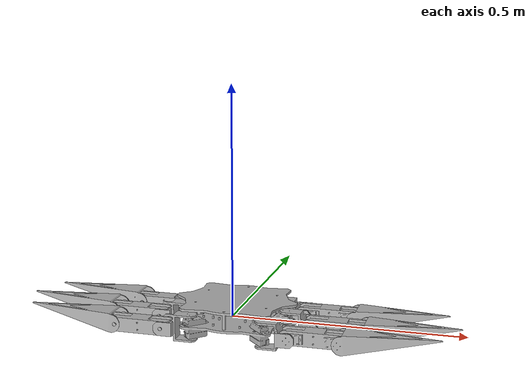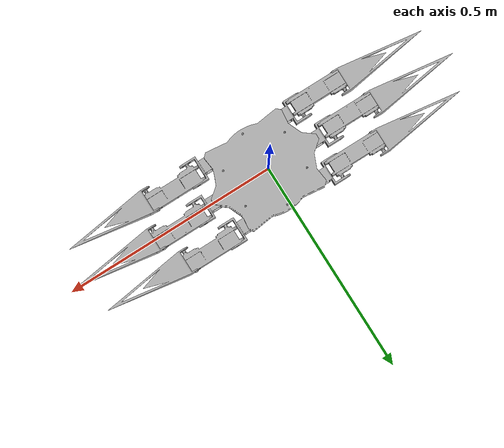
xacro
<?xml version="1.0" ?>
<robot name="hex_final_urdf" xmlns:xacro="http://www.ros.org/wiki/xacro">

<xacro:include filename="$(find hex_final_urdf_description)/urdf/materials.xacro" />
<xacro:include filename="$(find hex_final_urdf_description)/urdf/hex_final_urdf.trans" />
<xacro:include filename="$(find hex_final_urdf_description)/urdf/hex_final_urdf.gazebo" />

<link name="base_link">
  <inertial>
    <origin xyz="0.008825975080218545 -0.0006417253665135361 0.009163636393538644" rpy="0 0 0"/>
    <mass value="4.696322130210778"/>
    <inertia ixx="0.016504" iyy="0.024691" izz="0.036814" ixy="-4e-06" iyz="0.0" ixz="-0.0"/>
  </inertial>
  <visual>
    <origin xyz="0 0 0" rpy="0 0 0"/>
    <geometry>
      <mesh filename="package://hex_final_urdf_description/meshes/base_link.stl" scale="0.001 0.001 0.001"/>
    </geometry>
    <material name="silver"/>
  </visual>
  <collision>
    <origin xyz="0 0 0" rpy="0 0 0"/>
    <geometry>
      <mesh filename="package://hex_final_urdf_description/meshes/base_link.stl" scale="0.001 0.001 0.001"/>
    </geometry>
  </collision>
</link>

<link name="hip_link_1_1">
  <inertial>
    <origin xyz="-0.03206068846643359 -0.0005590825770585561 -0.028059834297053474" rpy="0 0 0"/>
    <mass value="0.02676157449504787"/>
    <inertia ixx="1.5e-05" iyy="1.7e-05" izz="1.6e-05" ixy="-0.0" iyz="0.0" ixz="0.0"/>
  </inertial>
  <visual>
    <origin xyz="0.068956 -0.077136 -0.021885" rpy="0 0 0"/>
    <geometry>
      <mesh filename="package://hex_final_urdf_description/meshes/hip_link_1_1.stl" scale="0.001 0.001 0.001"/>
    </geometry>
    <material name="silver"/>
  </visual>
  <collision>
    <origin xyz="0.068956 -0.077136 -0.021885" rpy="0 0 0"/>
    <geometry>
      <mesh filename="package://hex_final_urdf_description/meshes/hip_link_1_1.stl" scale="0.001 0.001 0.001"/>
    </geometry>
  </collision>
</link>

<link name="hip_link_3_1">
  <inertial>
    <origin xyz="-0.032060942535913226 -0.0005598285075788824 -0.028059834297053502" rpy="0 0 0"/>
    <mass value="0.02676157449504787"/>
    <inertia ixx="1.5e-05" iyy="1.7e-05" izz="1.6e-05" ixy="-0.0" iyz="0.0" ixz="0.0"/>
  </inertial>
  <visual>
    <origin xyz="0.101174 0.000645 -0.021885" rpy="0 0 0"/>
    <geometry>
      <mesh filename="package://hex_final_urdf_description/meshes/hip_link_3_1.stl" scale="0.001 0.001 0.001"/>
    </geometry>
    <material name="silver"/>
  </visual>
  <collision>
    <origin xyz="0.101174 0.000645 -0.021885" rpy="0 0 0"/>
    <geometry>
      <mesh filename="package://hex_final_urdf_description/meshes/hip_link_3_1.stl" scale="0.001 0.001 0.001"/>
    </geometry>
  </collision>
</link>

<link name="hip_link_5_1">
  <inertial>
    <origin xyz="-0.03206068846643352 -0.0005595744380991335 -0.02805983429705346" rpy="0 0 0"/>
    <mass value="0.02676157449504787"/>
    <inertia ixx="1.5e-05" iyy="1.7e-05" izz="1.6e-05" ixy="-0.0" iyz="0.0" ixz="0.0"/>
  </inertial>
  <visual>
    <origin xyz="0.068956 0.078427 -0.021885" rpy="0 0 0"/>
    <geometry>
      <mesh filename="package://hex_final_urdf_description/meshes/hip_link_5_1.stl" scale="0.001 0.001 0.001"/>
    </geometry>
    <material name="silver"/>
  </visual>
  <collision>
    <origin xyz="0.068956 0.078427 -0.021885" rpy="0 0 0"/>
    <geometry>
      <mesh filename="package://hex_final_urdf_description/meshes/hip_link_5_1.stl" scale="0.001 0.001 0.001"/>
    </geometry>
  </collision>
</link>

<link name="hip_link_2_1">
  <inertial>
    <origin xyz="0.032060405545851225 0.0005595915681265995 -0.02805983429705361" rpy="0 0 0"/>
    <mass value="0.026761574495047884"/>
    <inertia ixx="1.5e-05" iyy="1.7e-05" izz="1.6e-05" ixy="-0.0" iyz="-0.0" ixz="-0.0"/>
  </inertial>
  <visual>
    <origin xyz="-0.086608 -0.077136 -0.021885" rpy="0 0 0"/>
    <geometry>
      <mesh filename="package://hex_final_urdf_description/meshes/hip_link_2_1.stl" scale="0.001 0.001 0.001"/>
    </geometry>
    <material name="silver"/>
  </visual>
  <collision>
    <origin xyz="-0.086608 -0.077136 -0.021885" rpy="0 0 0"/>
    <geometry>
      <mesh filename="package://hex_final_urdf_description/meshes/hip_link_2_1.stl" scale="0.001 0.001 0.001"/>
    </geometry>
  </collision>
</link>

<link name="hip_link_4_1">
  <inertial>
    <origin xyz="0.032060659615331014 0.0005588456376063277 -0.02805983429705355" rpy="0 0 0"/>
    <mass value="0.026761574495047884"/>
    <inertia ixx="1.5e-05" iyy="1.7e-05" izz="1.6e-05" ixy="-0.0" iyz="-0.0" ixz="-0.0"/>
  </inertial>
  <visual>
    <origin xyz="-0.118826 0.000645 -0.021885" rpy="0 0 0"/>
    <geometry>
      <mesh filename="package://hex_final_urdf_description/meshes/hip_link_4_1.stl" scale="0.001 0.001 0.001"/>
    </geometry>
    <material name="silver"/>
  </visual>
  <collision>
    <origin xyz="-0.118826 0.000645 -0.021885" rpy="0 0 0"/>
    <geometry>
      <mesh filename="package://hex_final_urdf_description/meshes/hip_link_4_1.stl" scale="0.001 0.001 0.001"/>
    </geometry>
  </collision>
</link>

<link name="hip_link_6_1">
  <inertial>
    <origin xyz="0.032060405545851295 0.000559099707086036 -0.02805983429705349" rpy="0 0 0"/>
    <mass value="0.026761574495047884"/>
    <inertia ixx="1.5e-05" iyy="1.7e-05" izz="1.6e-05" ixy="-0.0" iyz="-0.0" ixz="-0.0"/>
  </inertial>
  <visual>
    <origin xyz="-0.086608 0.078427 -0.021885" rpy="0 0 0"/>
    <geometry>
      <mesh filename="package://hex_final_urdf_description/meshes/hip_link_6_1.stl" scale="0.001 0.001 0.001"/>
    </geometry>
    <material name="silver"/>
  </visual>
  <collision>
    <origin xyz="-0.086608 0.078427 -0.021885" rpy="0 0 0"/>
    <geometry>
      <mesh filename="package://hex_final_urdf_description/meshes/hip_link_6_1.stl" scale="0.001 0.001 0.001"/>
    </geometry>
  </collision>
</link>

<link name="thigh_link_1_1">
  <inertial>
    <origin xyz="-0.05264062317283599 -0.033571274079311056 -1.9542260402799147e-05" rpy="0 0 0"/>
    <mass value="0.11346511278470423"/>
    <inertia ixx="2.8e-05" iyy="0.0002" izz="0.000213" ixy="0.0" iyz="0.0" ixz="-0.0"/>
  </inertial>
  <visual>
    <origin xyz="0.126956 -0.104636 0.005615" rpy="0 0 0"/>
    <geometry>
      <mesh filename="package://hex_final_urdf_description/meshes/thigh_link_1_1.stl" scale="0.001 0.001 0.001"/>
    </geometry>
    <material name="silver"/>
  </visual>
  <collision>
    <origin xyz="0.126956 -0.104636 0.005615" rpy="0 0 0"/>
    <geometry>
      <mesh filename="package://hex_final_urdf_description/meshes/thigh_link_1_1.stl" scale="0.001 0.001 0.001"/>
    </geometry>
  </collision>
</link>

<link name="thigh_link_3_1">
  <inertial>
    <origin xyz="-0.05264087724231564 -0.03357202000983138 -1.9542260402826035e-05" rpy="0 0 0"/>
    <mass value="0.11346511278470423"/>
    <inertia ixx="2.8e-05" iyy="0.0002" izz="0.000213" ixy="0.0" iyz="0.0" ixz="-0.0"/>
  </inertial>
  <visual>
    <origin xyz="0.159174 -0.026855 0.005615" rpy="0 0 0"/>
    <geometry>
      <mesh filename="package://hex_final_urdf_description/meshes/thigh_link_3_1.stl" scale="0.001 0.001 0.001"/>
    </geometry>
    <material name="silver"/>
  </visual>
  <collision>
    <origin xyz="0.159174 -0.026855 0.005615" rpy="0 0 0"/>
    <geometry>
      <mesh filename="package://hex_final_urdf_description/meshes/thigh_link_3_1.stl" scale="0.001 0.001 0.001"/>
    </geometry>
  </collision>
</link>

<link name="thigh_link_5_1">
  <inertial>
    <origin xyz="-0.052640623172835965 -0.033571765940351606 -1.9542260402783534e-05" rpy="0 0 0"/>
    <mass value="0.11346511278470423"/>
    <inertia ixx="2.8e-05" iyy="0.0002" izz="0.000213" ixy="0.0" iyz="0.0" ixz="-0.0"/>
  </inertial>
  <visual>
    <origin xyz="0.126956 0.050927 0.005615" rpy="0 0 0"/>
    <geometry>
      <mesh filename="package://hex_final_urdf_description/meshes/thigh_link_5_1.stl" scale="0.001 0.001 0.001"/>
    </geometry>
    <material name="silver"/>
  </visual>
  <collision>
    <origin xyz="0.126956 0.050927 0.005615" rpy="0 0 0"/>
    <geometry>
      <mesh filename="package://hex_final_urdf_description/meshes/thigh_link_5_1.stl" scale="0.001 0.001 0.001"/>
    </geometry>
  </collision>
</link>

<link name="thigh_link_2_1">
  <inertial>
    <origin xyz="0.05263886798255954 0.03357178275317327 1.8547903258242342e-05" rpy="0 0 0"/>
    <mass value="0.11346511468823228"/>
    <inertia ixx="2.8e-05" iyy="0.0002" izz="0.000213" ixy="-0.0" iyz="0.0" ixz="0.0"/>
  </inertial>
  <visual>
    <origin xyz="-0.144608 -0.049636 0.005615" rpy="0 0 0"/>
    <geometry>
      <mesh filename="package://hex_final_urdf_description/meshes/thigh_link_2_1.stl" scale="0.001 0.001 0.001"/>
    </geometry>
    <material name="silver"/>
  </visual>
  <collision>
    <origin xyz="-0.144608 -0.049636 0.005615" rpy="0 0 0"/>
    <geometry>
      <mesh filename="package://hex_final_urdf_description/meshes/thigh_link_2_1.stl" scale="0.001 0.001 0.001"/>
    </geometry>
  </collision>
</link>

<link name="thigh_link_4_1">
  <inertial>
    <origin xyz="0.05263912205203933 0.03357103682265299 1.8547903258304792e-05" rpy="0 0 0"/>
    <mass value="0.11346511468823228"/>
    <inertia ixx="2.8e-05" iyy="0.0002" izz="0.000213" ixy="-0.0" iyz="0.0" ixz="0.0"/>
  </inertial>
  <visual>
    <origin xyz="-0.176826 0.028145 0.005615" rpy="0 0 0"/>
    <geometry>
      <mesh filename="package://hex_final_urdf_description/meshes/thigh_link_4_1.stl" scale="0.001 0.001 0.001"/>
    </geometry>
    <material name="silver"/>
  </visual>
  <collision>
    <origin xyz="-0.176826 0.028145 0.005615" rpy="0 0 0"/>
    <geometry>
      <mesh filename="package://hex_final_urdf_description/meshes/thigh_link_4_1.stl" scale="0.001 0.001 0.001"/>
    </geometry>
  </collision>
</link>

<link name="thigh_link_6_1">
  <inertial>
    <origin xyz="0.052638867982559595 0.03357129089213268 1.854790325838459e-05" rpy="0 0 0"/>
    <mass value="0.11346511468823228"/>
    <inertia ixx="2.8e-05" iyy="0.0002" izz="0.000213" ixy="-0.0" iyz="0.0" ixz="0.0"/>
  </inertial>
  <visual>
    <origin xyz="-0.144608 0.105927 0.005615" rpy="0 0 0"/>
    <geometry>
      <mesh filename="package://hex_final_urdf_description/meshes/thigh_link_6_1.stl" scale="0.001 0.001 0.001"/>
    </geometry>
    <material name="silver"/>
  </visual>
  <collision>
    <origin xyz="-0.144608 0.105927 0.005615" rpy="0 0 0"/>
    <geometry>
      <mesh filename="package://hex_final_urdf_description/meshes/thigh_link_6_1.stl" scale="0.001 0.001 0.001"/>
    </geometry>
  </collision>
</link>

<link name="shin_link_1_1">
  <inertial>
    <origin xyz="-0.06567923673204151 -0.02667853756935462 0.010343853082014309" rpy="0 0 0"/>
    <mass value="0.28364788051397943"/>
    <inertia ixx="0.000125" iyy="0.000706" izz="0.000765" ixy="6e-06" iyz="-1e-06" ixz="5.2e-05"/>
  </inertial>
  <visual>
    <origin xyz="0.232236 -0.104636 0.005615" rpy="0 0 0"/>
    <geometry>
      <mesh filename="package://hex_final_urdf_description/meshes/shin_link_1_1.stl" scale="0.001 0.001 0.001"/>
    </geometry>
    <material name="silver"/>
  </visual>
  <collision>
    <origin xyz="0.232236 -0.104636 0.005615" rpy="0 0 0"/>
    <geometry>
      <mesh filename="package://hex_final_urdf_description/meshes/shin_link_1_1.stl" scale="0.001 0.001 0.001"/>
    </geometry>
  </collision>
</link>

<link name="shin_link_3_1">
  <inertial>
    <origin xyz="-0.06567949080152108 -0.026679283499874935 0.01034385308201428" rpy="0 0 0"/>
    <mass value="0.28364788051397943"/>
    <inertia ixx="0.000125" iyy="0.000706" izz="0.000765" ixy="6e-06" iyz="-1e-06" ixz="5.2e-05"/>
  </inertial>
  <visual>
    <origin xyz="0.264454 -0.026855 0.005615" rpy="0 0 0"/>
    <geometry>
      <mesh filename="package://hex_final_urdf_description/meshes/shin_link_3_1.stl" scale="0.001 0.001 0.001"/>
    </geometry>
    <material name="silver"/>
  </visual>
  <collision>
    <origin xyz="0.264454 -0.026855 0.005615" rpy="0 0 0"/>
    <geometry>
      <mesh filename="package://hex_final_urdf_description/meshes/shin_link_3_1.stl" scale="0.001 0.001 0.001"/>
    </geometry>
  </collision>
</link>

<link name="shin_link_5_1">
  <inertial>
    <origin xyz="-0.06567923673204129 -0.026679029430395157 0.010343853082014326" rpy="0 0 0"/>
    <mass value="0.28364788051397943"/>
    <inertia ixx="0.000125" iyy="0.000706" izz="0.000765" ixy="6e-06" iyz="-1e-06" ixz="5.2e-05"/>
  </inertial>
  <visual>
    <origin xyz="0.232236 0.050927 0.005615" rpy="0 0 0"/>
    <geometry>
      <mesh filename="package://hex_final_urdf_description/meshes/shin_link_5_1.stl" scale="0.001 0.001 0.001"/>
    </geometry>
    <material name="silver"/>
  </visual>
  <collision>
    <origin xyz="0.232236 0.050927 0.005615" rpy="0 0 0"/>
    <geometry>
      <mesh filename="package://hex_final_urdf_description/meshes/shin_link_5_1.stl" scale="0.001 0.001 0.001"/>
    </geometry>
  </collision>
</link>

<link name="shin_link_2_1">
  <inertial>
    <origin xyz="0.06567895381145672 0.0266790465604224 0.010343853082014326" rpy="0 0 0"/>
    <mass value="0.28364788051397866"/>
    <inertia ixx="0.000125" iyy="0.000706" izz="0.000765" ixy="6e-06" iyz="1e-06" ixz="-5.2e-05"/>
  </inertial>
  <visual>
    <origin xyz="-0.249888 -0.049636 0.005615" rpy="0 0 0"/>
    <geometry>
      <mesh filename="package://hex_final_urdf_description/meshes/shin_link_2_1.stl" scale="0.001 0.001 0.001"/>
    </geometry>
    <material name="silver"/>
  </visual>
  <collision>
    <origin xyz="-0.249888 -0.049636 0.005615" rpy="0 0 0"/>
    <geometry>
      <mesh filename="package://hex_final_urdf_description/meshes/shin_link_2_1.stl" scale="0.001 0.001 0.001"/>
    </geometry>
  </collision>
</link>

<link name="shin_link_4_1">
  <inertial>
    <origin xyz="0.06567920788093651 0.026678300629902132 0.010343853082014388" rpy="0 0 0"/>
    <mass value="0.28364788051397866"/>
    <inertia ixx="0.000125" iyy="0.000706" izz="0.000765" ixy="6e-06" iyz="1e-06" ixz="-5.2e-05"/>
  </inertial>
  <visual>
    <origin xyz="-0.282106 0.028145 0.005615" rpy="0 0 0"/>
    <geometry>
      <mesh filename="package://hex_final_urdf_description/meshes/shin_link_4_1.stl" scale="0.001 0.001 0.001"/>
    </geometry>
    <material name="silver"/>
  </visual>
  <collision>
    <origin xyz="-0.282106 0.028145 0.005615" rpy="0 0 0"/>
    <geometry>
      <mesh filename="package://hex_final_urdf_description/meshes/shin_link_4_1.stl" scale="0.001 0.001 0.001"/>
    </geometry>
  </collision>
</link>

<link name="shin_link_6_1">
  <inertial>
    <origin xyz="0.06567895381145672 0.02667855469938181 0.01034385308201451" rpy="0 0 0"/>
    <mass value="0.28364788051397866"/>
    <inertia ixx="0.000125" iyy="0.000706" izz="0.000765" ixy="6e-06" iyz="1e-06" ixz="-5.2e-05"/>
  </inertial>
  <visual>
    <origin xyz="-0.249888 0.105927 0.005615" rpy="0 0 0"/>
    <geometry>
      <mesh filename="package://hex_final_urdf_description/meshes/shin_link_6_1.stl" scale="0.001 0.001 0.001"/>
    </geometry>
    <material name="silver"/>
  </visual>
  <collision>
    <origin xyz="-0.249888 0.105927 0.005615" rpy="0 0 0"/>
    <geometry>
      <mesh filename="package://hex_final_urdf_description/meshes/shin_link_6_1.stl" scale="0.001 0.001 0.001"/>
    </geometry>
  </collision>
</link>

<joint name="hip_joint_1" type="revolute">
  <origin xyz="-0.068956 0.077136 0.021885" rpy="0 0 0"/>
  <parent link="base_link"/>
  <child link="hip_link_1_1"/>
  <axis xyz="0.0 0.0 1.0"/>
  <limit upper="0.261799" lower="-1.570796" effort="100" velocity="100"/>
</joint>

<joint name="hip_joint_3" type="revolute">
  <origin xyz="-0.101174 -0.000645 0.021885" rpy="0 0 0"/>
  <parent link="base_link"/>
  <child link="hip_link_3_1"/>
  <axis xyz="0.0 0.0 1.0"/>
  <limit upper="1.047198" lower="-1.047198" effort="100" velocity="100"/>
</joint>

<joint name="hip_joint_5" type="revolute">
  <origin xyz="-0.068956 -0.078427 0.021885" rpy="0 0 0"/>
  <parent link="base_link"/>
  <child link="hip_link_5_1"/>
  <axis xyz="0.0 0.0 1.0"/>
  <limit upper="1.570796" lower="-0.261799" effort="100" velocity="100"/>
</joint>

<joint name="hip_joint_2" type="revolute">
  <origin xyz="0.086608 0.077136 0.021885" rpy="0 0 0"/>
  <parent link="base_link"/>
  <child link="hip_link_2_1"/>
  <axis xyz="0.0 0.0 1.0"/>
  <limit upper="1.570796" lower="-0.261799" effort="100" velocity="100"/>
</joint>

<joint name="hip_joint_4" type="revolute">
  <origin xyz="0.118826 -0.000645 0.021885" rpy="0 0 0"/>
  <parent link="base_link"/>
  <child link="hip_link_4_1"/>
  <axis xyz="0.0 0.0 1.0"/>
  <limit upper="1.047198" lower="-1.047198" effort="100" velocity="100"/>
</joint>

<joint name="hip_joint_6" type="revolute">
  <origin xyz="0.086608 -0.078427 0.021885" rpy="0 0 0"/>
  <parent link="base_link"/>
  <child link="hip_link_6_1"/>
  <axis xyz="0.0 0.0 1.0"/>
  <limit upper="0.261799" lower="-1.570796" effort="100" velocity="100"/>
</joint>

<joint name="knee_joint_1" type="revolute">
  <origin xyz="-0.058 0.0275 -0.0275" rpy="0 0 0"/>
  <parent link="hip_link_1_1"/>
  <child link="thigh_link_1_1"/>
  <axis xyz="0.0 -1.0 0.0"/>
  <limit upper="1.570796" lower="-1.570796" effort="100" velocity="100"/>
</joint>

<joint name="knee_joint_3" type="revolute">
  <origin xyz="-0.058 0.0275 -0.0275" rpy="0 0 0"/>
  <parent link="hip_link_3_1"/>
  <child link="thigh_link_3_1"/>
  <axis xyz="0.0 -1.0 0.0"/>
  <limit upper="1.570796" lower="-1.570796" effort="100" velocity="100"/>
</joint>

<joint name="knee_joint_5" type="revolute">
  <origin xyz="-0.058 0.0275 -0.0275" rpy="0 0 0"/>
  <parent link="hip_link_5_1"/>
  <child link="thigh_link_5_1"/>
  <axis xyz="0.0 -1.0 0.0"/>
  <limit upper="1.570796" lower="-1.570796" effort="100" velocity="100"/>
</joint>

<joint name="knee_joint_2" type="revolute">
  <origin xyz="0.058 -0.0275 -0.0275" rpy="0 0 0"/>
  <parent link="hip_link_2_1"/>
  <child link="thigh_link_2_1"/>
  <axis xyz="0.0 1.0 0.0"/>
  <limit upper="1.570796" lower="-1.570796" effort="100" velocity="100"/>
</joint>

<joint name="knee_joint_4" type="revolute">
  <origin xyz="0.058 -0.0275 -0.0275" rpy="0 0 0"/>
  <parent link="hip_link_4_1"/>
  <child link="thigh_link_4_1"/>
  <axis xyz="0.0 1.0 0.0"/>
  <limit upper="1.570796" lower="-1.570796" effort="100" velocity="100"/>
</joint>

<joint name="knee_joint_6" type="revolute">
  <origin xyz="0.058 -0.0275 -0.0275" rpy="0 0 0"/>
  <parent link="hip_link_6_1"/>
  <child link="thigh_link_6_1"/>
  <axis xyz="0.0 1.0 0.0"/>
  <limit upper="1.570796" lower="-1.570796" effort="100" velocity="100"/>
</joint>
<joint name="ankle_joint_1" type="revolute">
  <origin xyz="-0.10528 0.0 0.0" rpy="0 0 0"/>
  <parent link="thigh_link_1_1"/>
  <child link="shin_link_1_1"/>
  <axis xyz="0.0 1.0 0.0"/>
  <limit upper="0.785398" lower="-2.356194" effort="100" velocity="100"/>
</joint>

<joint name="ankle_joint_3" type="revolute">
  <origin xyz="-0.10528 0.0 0.0" rpy="0 0 0"/>
  <parent link="thigh_link_3_1"/>
  <child link="shin_link_3_1"/>
  <axis xyz="0.0 1.0 0.0"/>
  <limit upper="0.785398" lower="-2.356194" effort="100" velocity="100"/>
</joint>

<joint name="ankle_joint_5" type="revolute">
  <origin xyz="-0.10528 0.0 0.0" rpy="0 0 0"/>
  <parent link="thigh_link_5_1"/>
  <child link="shin_link_5_1"/>
  <axis xyz="0.0 1.0 0.0"/>
  <limit upper="0.785398" lower="-2.356194" effort="100" velocity="100"/>
</joint>

<joint name="ankle_joint_2" type="revolute">
  <origin xyz="0.10528 0.0 0.0" rpy="0 0 0"/>
  <parent link="thigh_link_2_1"/>
  <child link="shin_link_2_1"/>
  <axis xyz="0.0 -1.0 0.0"/>
  <limit upper="0.785398" lower="-2.356194" effort="100" velocity="100"/>
</joint>

<joint name="ankle_joint_4" type="revolute">
  <origin xyz="0.10528 0.0 0.0" rpy="0 0 0"/>
  <parent link="thigh_link_4_1"/>
  <child link="shin_link_4_1"/>
  <axis xyz="0.0 -1.0 0.0"/>
  <limit upper="0.785398" lower="-2.356194" effort="100" velocity="100"/>
</joint>

<joint name="ankle_joint_6" type="revolute">
  <origin xyz="0.10528 0.0 0.0" rpy="0 0 0"/>
  <parent link="thigh_link_6_1"/>
  <child link="shin_link_6_1"/>
  <axis xyz="0.0 -1.0 0.0"/>
  <limit upper="0.785398" lower="-2.356194" effort="100" velocity="100"/>
</joint>

</robot>

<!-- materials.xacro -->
<robot name="hex_final_urdf" xmlns:xacro="http://www.ros.org/wiki/xacro" >

<material name="silver">
  <color rgba="0.700 0.700 0.700 1.000"/>
</material>

</robot>

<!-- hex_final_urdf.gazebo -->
<robot name="hex_final_urdf" xmlns:xacro="http://www.ros.org/wiki/xacro" >

<xacro:property name="body_color" value="Gazebo/Silver" />

<gazebo>
  <plugin name="gazebo_ros_control" filename="libgazebo_ros_control.so"/>
</gazebo>
<gazebo reference="base_link">
  <material>${body_color}</material>
  <mu1>0.2</mu1>
  <mu2>0.2</mu2>
  <selfCollide>true</selfCollide>
  <gravity>true</gravity>
</gazebo>

<gazebo reference="hip_link_1_1">
  <material>${body_color}</material>
  <mu1>0.2</mu1>
  <mu2>0.2</mu2>
  <selfCollide>true</selfCollide>
</gazebo>

<gazebo reference="hip_link_3_1">
  <material>${body_color}</material>
  <mu1>0.2</mu1>
  <mu2>0.2</mu2>
  <selfCollide>true</selfCollide>
</gazebo>

<gazebo reference="hip_link_5_1">
  <material>${body_color}</material>
  <mu1>0.2</mu1>
  <mu2>0.2</mu2>
  <selfCollide>true</selfCollide>
</gazebo>

<gazebo reference="hip_link_2_1">
  <material>${body_color}</material>
  <mu1>0.2</mu1>
  <mu2>0.2</mu2>
  <selfCollide>true</selfCollide>
</gazebo>

<gazebo reference="hip_link_4_1">
  <material>${body_color}</material>
  <mu1>0.2</mu1>
  <mu2>0.2</mu2>
  <selfCollide>true</selfCollide>
</gazebo>

<gazebo reference="hip_link_6_1">
  <material>${body_color}</material>
  <mu1>0.2</mu1>
  <mu2>0.2</mu2>
  <selfCollide>true</selfCollide>
</gazebo>

<gazebo reference="thigh_link_1_1">
  <material>${body_color}</material>
  <mu1>0.2</mu1>
  <mu2>0.2</mu2>
  <selfCollide>true</selfCollide>
</gazebo>

<gazebo reference="thigh_link_3_1">
  <material>${body_color}</material>
  <mu1>0.2</mu1>
  <mu2>0.2</mu2>
  <selfCollide>true</selfCollide>
</gazebo>

<gazebo reference="thigh_link_5_1">
  <material>${body_color}</material>
  <mu1>0.2</mu1>
  <mu2>0.2</mu2>
  <selfCollide>true</selfCollide>
</gazebo>

<gazebo reference="thigh_link_2_1">
  <material>${body_color}</material>
  <mu1>0.2</mu1>
  <mu2>0.2</mu2>
  <selfCollide>true</selfCollide>
</gazebo>

<gazebo reference="thigh_link_4_1">
  <material>${body_color}</material>
  <mu1>0.2</mu1>
  <mu2>0.2</mu2>
  <selfCollide>true</selfCollide>
</gazebo>

<gazebo reference="thigh_link_6_1">
  <material>${body_color}</material>
  <mu1>0.2</mu1>
  <mu2>0.2</mu2>
  <selfCollide>true</selfCollide>
</gazebo>

<gazebo reference="shin_link_1_1">
  <material>${body_color}</material>
  <mu1>1.2</mu1>
  <mu2>1.2</mu2>
  <selfCollide>true</selfCollide>
</gazebo>

<gazebo reference="shin_link_3_1">
  <material>${body_color}</material>
  <mu1>1.2</mu1>
  <mu2>1.2</mu2>
  <selfCollide>true</selfCollide>
</gazebo>

<gazebo reference="shin_link_5_1">
  <material>${body_color}</material>
  <mu1>1.2</mu1>
  <mu2>1.2</mu2>
  <selfCollide>true</selfCollide>
</gazebo>

<gazebo reference="shin_link_2_1">
  <material>${body_color}</material>
  <mu1>1.2</mu1>
  <mu2>1.2</mu2>
  <selfCollide>true</selfCollide>
</gazebo>

<gazebo reference="shin_link_4_1">
  <material>${body_color}</material>
  <mu1>1.2</mu1>
  <mu2>1.2</mu2>
  <selfCollide>true</selfCollide>
</gazebo>

<gazebo reference="shin_link_6_1">
  <material>${body_color}</material>
  <mu1>1.2</mu1>
  <mu2>1.2</mu2>
  <selfCollide>true</selfCollide>
</gazebo>

</robot>
